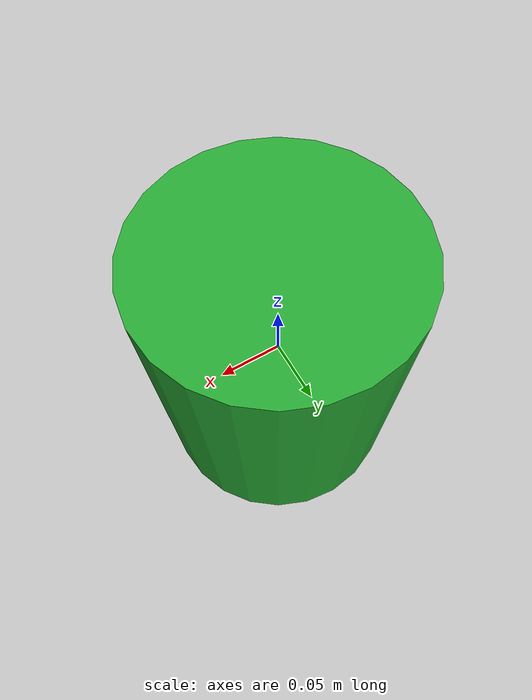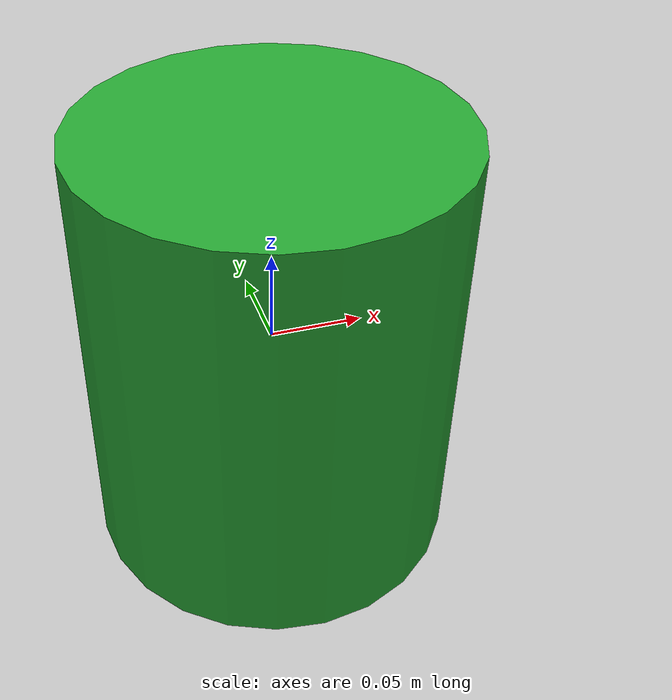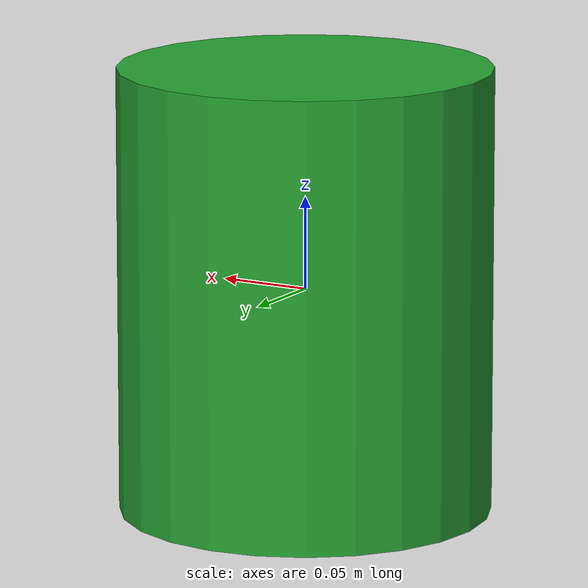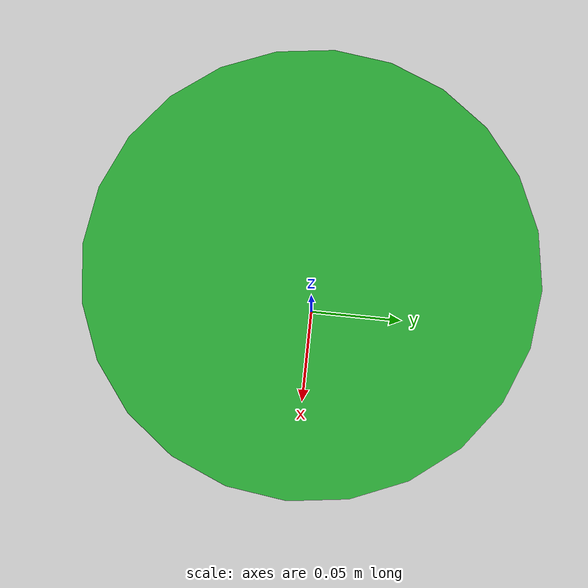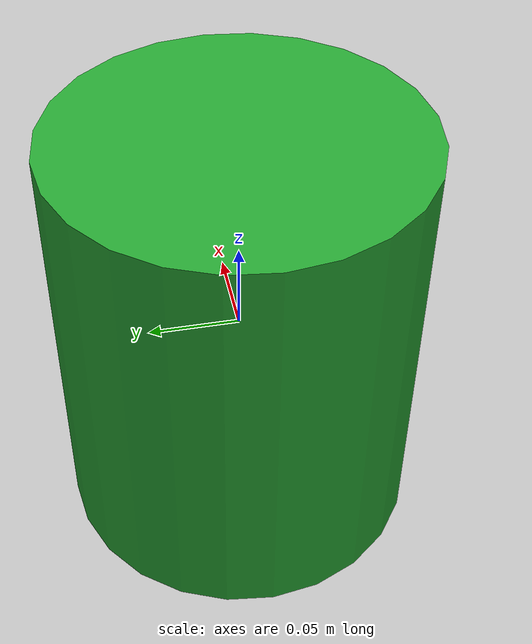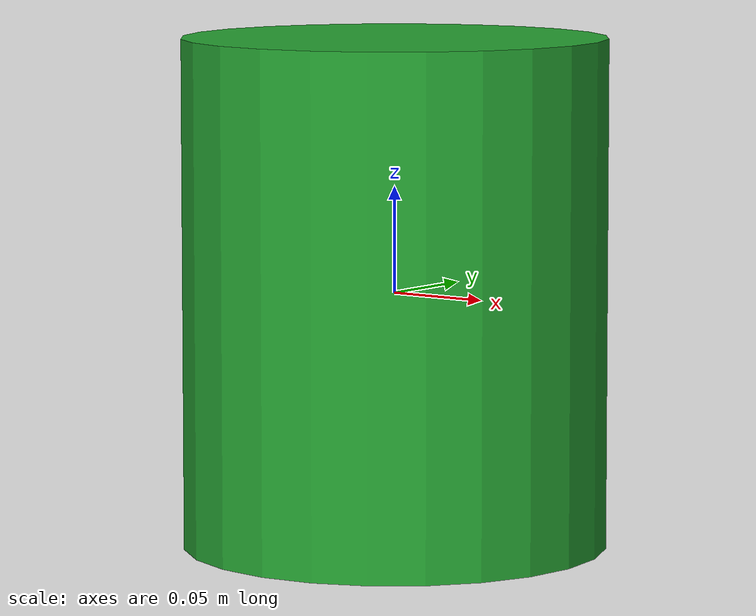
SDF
<?xml version="1.0" ?>
<sdf version="1.5">
  <model name="cylinder_green">
    <static>true</static>
    <link name="link">
      <collision name="cylinder_green">
        <pose>0 0 0 0 0 0</pose>
        <geometry>
          <cylinder>
            <radius>0.1</radius>
            <length>0.24</length>
          </cylinder>
        </geometry>
      </collision>
      <visual name="cylinder_green">
        <pose>0 0 0 0 0 0</pose>
        <geometry>
          <cylinder>
            <radius>0.1</radius>
            <length>0.24</length>
          </cylinder>
        </geometry>
        <material>
          <script>
            <uri>file://media/materials/scripts/gazebo.material</uri>
            <name>Gazebo/Green</name>
          </script>
        </material>
      </visual>
    </link>
  </model>
</sdf>
